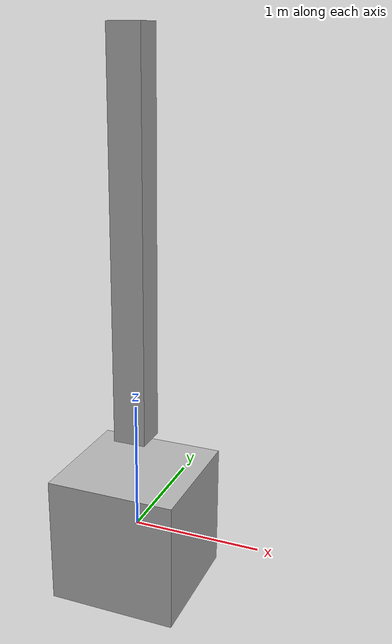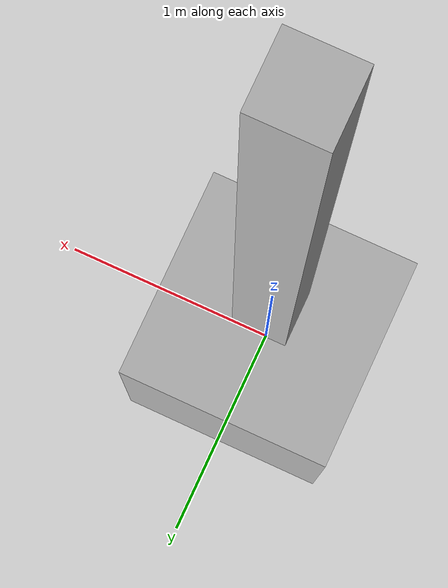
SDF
<sdf version="1.6">
  <model name="my_model">
    <gazebo>
      <plugin name="gazebo_ros_control" filename="libgazebo_ros_control.so">
        <robotNamespace>/my_model</robotNamespace>
      </plugin>
    </gazebo>

      <static>false</static>
      <!-- base link -->
      <link name="link_0">
        <static>false</static>
        <pose>0 0 0 0 0 0</pose>

        <inertial>
          <mass>100</mass>
          <inertia> <!-- inertias are tricky to compute -->
            <!-- http://gazebosim.org/tutorials?tut=inertia&cat=build_robot -->
            <ixx>8.3</ixx>       <!-- for a box: ixx = 0.083 * mass * (y*y + z*z) -->
            <ixy>0.0</ixy>         <!-- for a box: ixy = 0 -->
            <ixz>0.0</ixz>         <!-- for a box: ixz = 0 -->
            <iyy>8.3</iyy>       <!-- for a box: iyy = 0.083 * mass * (x*x + z*z) -->
            <iyz>0.0</iyz>         <!-- for a box: iyz = 0 -->
            <izz>8.3</izz>       <!-- for a box: izz = 0.083 * mass * (x*x + y*y) -->
          </inertia>
        </inertial>
        <collision name="collision">
          <geometry>
            <box>
              <size>1 1 1</size>
            </box>
          </geometry>
        </collision>
        <visual name="visual">
          <geometry>
            <box>
              <size>1 1 1</size>
            </box>
          </geometry>
        </visual>
      </link>

      <link name="link_1">
        <pose>0 0 2.25 0 0 0</pose>
        <static>false</static>
        <inertial>
          <mass>1.0</mass>
          <inertia> <!-- inertias are tricky to compute -->
            <!-- http://gazebosim.org/tutorials?tut=inertia&cat=build_robot -->
            <ixx>0.01266</ixx>       <!-- for a box: ixx = 0.083 * mass * (y*y + z*z) -->
            <ixy>0.0</ixy>           <!-- for a box: ixy = 0 -->
            <ixz>0.0</ixz>           <!-- for a box: ixz = 0 -->
            <iyy>0.01266</iyy>       <!-- for a box: iyy = 0.083 * mass * (x*x + z*z) -->
            <iyz>0.0</iyz>           <!-- for a box: iyz = 0 -->
            <izz>0.01038</izz>       <!-- for a box: izz = 0.083 * mass * (x*x + y*y) -->
          </inertia>
        </inertial>
        <collision name="link_1_coll">
          <geometry>
            <box>
              <size>0.25 0.25 3</size>
            </box>
          </geometry>
        </collision>
        <visual name="link_1_vis">
          <geometry>
            <box>
              <size>0.25 0.25 3</size>
            </box>
          </geometry>
        </visual>
      </link>

      <joint name="joint_1" type="revolute">
        <pose>0 0 -1.5 0 0 0</pose>
        <parent>link_0</parent>
        <child>link_1</child>
        <axis>
          <xyz>0 1 0</xyz>
          <limit>
            <lower>-1.57</lower> <!-- -90 degrees -->
            <upper>1.57</upper>  <!-- 90 degrees -->
          </limit>
        </axis>
      </joint>

      <transmission name="tran1">
        <type>transmission_interface/SimpleTransmission</type>
        <joint name="joint_1"/>
        <actuator name="motor1">
          <hardwareInterface>EffortJointInterface</hardwareInterface>
          <mechanicalReduction>1</mechanicalReduction>
        </actuator>
      </transmission>
    </model>
</sdf>
